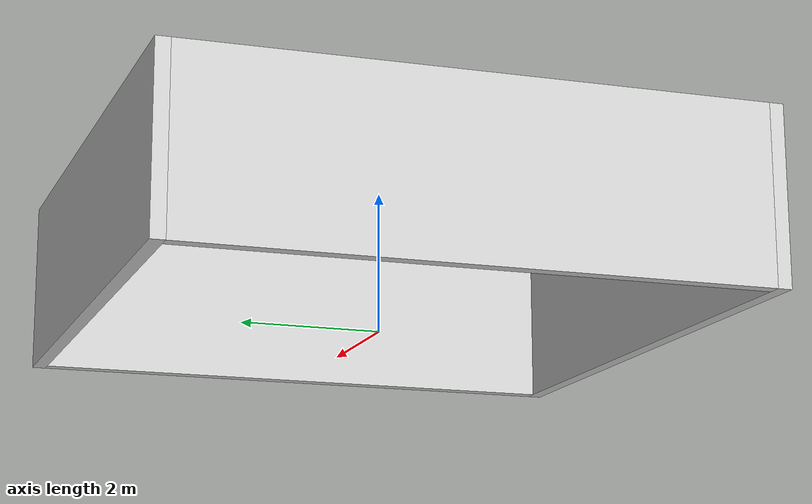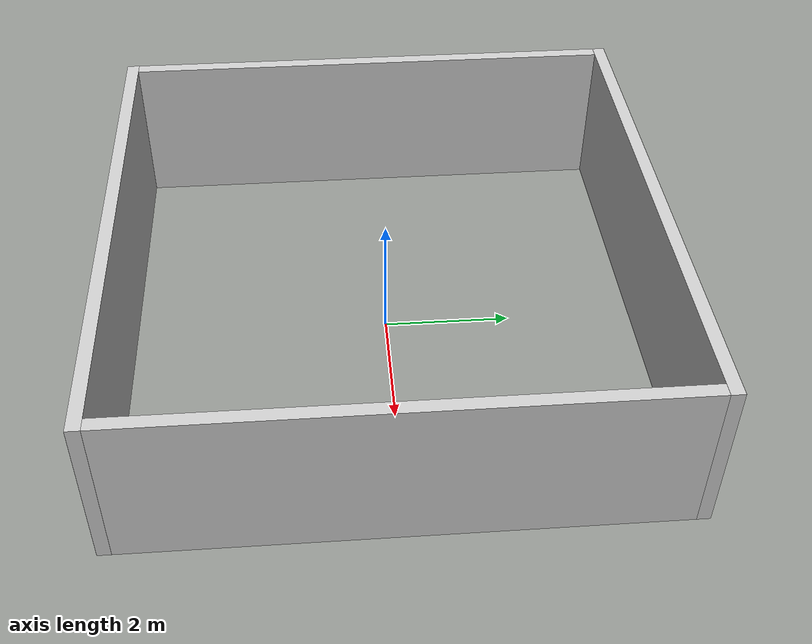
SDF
<sdf version="1.6">
	<model name="walls">
		<static>true</static>
		<pose>0 0 0 0 0 0</pose>
		<link name="north_wall">
			<pose>4.1 0 1.25 0 0 0</pose>
			<collision name="collision">
				<geometry>
					<box>
            			<size>0.20 8 2.5</size>
          			</box>
				</geometry>
			</collision>
			<visual name="visual">
				<geometry>
					<box>
            			<size>0.20 8 2.5</size>
          			</box>
				</geometry>
					<material>
						<ambient>0.8 0.8 0.8 1</ambient>
						<diffuse>0.8 0.8 0.8 1</diffuse>
						<specular>0.8 0.8 0.8 1</specular>
					</material>
					<transparency>0.1</transparency>
			</visual>
		</link>
		<link name="west_wall">
			<pose>0 4.1 1.25 0 0 1.5707963</pose>
			<collision name="collision">
				<geometry>
					<box>
            			<size>0.20 8.4 2.5</size>
          			</box>
				</geometry>
			</collision>
			<visual name="visual">
				<geometry>
					<box>
            			<size>0.20 8.4 2.5</size>
          			</box>
				</geometry>
					<material>
						<ambient>0.8 0.8 0.8 1</ambient>
						<diffuse>0.8 0.8 0.8 1</diffuse>
						<specular>0.8 0.8 0.8 1</specular>
					</material>
					<transparency>0.1</transparency>
			</visual>
		</link>
		<link name="east_wall">
			<pose>0 -4.1 1.25 0 0 1.5707963</pose>
			<collision name="collision">
				<geometry>
					<box>
            			<size>0.20 8.4 2.5</size>
          			</box>
				</geometry>
			</collision>
			<visual name="visual">
				<geometry>
					<box>
            			<size>0.20 8.4 2.5</size>
          			</box>
				</geometry>
					<material>
						<ambient>0.8 0.8 0.8 1</ambient>
						<diffuse>0.8 0.8 0.8 1</diffuse>
						<specular>0.8 0.8 0.8 1</specular>
					</material>
					<transparency>0.1</transparency>
			</visual>
		</link>
		<link name="south_wall">
			<pose>-4.1 0 1.25 0 0 0</pose>
			<collision name="collision">
				<geometry>
					<box>
            			<size>0.20 8 2.5</size>
          			</box>
				</geometry>
			</collision>
			<visual name="visual">
				<geometry>
					<box>
            			<size>0.20 8 2.5</size>
          			</box>
				</geometry>
					<material>
						<ambient>0.8 0.8 0.8 1</ambient>
						<diffuse>0.8 0.8 0.8 1</diffuse>
						<specular>0.8 0.8 0.8 1</specular>
					</material>
					<transparency>0.1</transparency>
			</visual>
		</link>
	</model>
</sdf>
